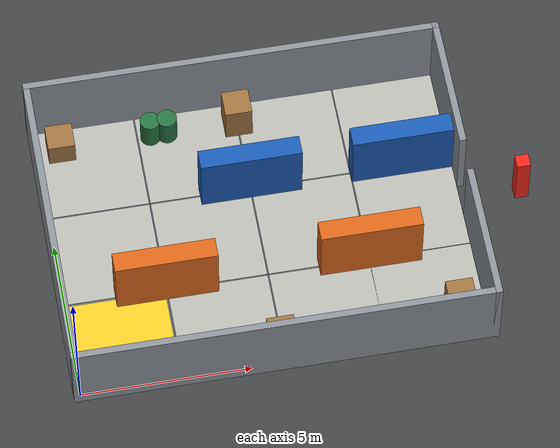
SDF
<?xml version="1.0"?>
<sdf version="1.6">
  <world name="warehouse">
    <gui><camera name="user_camera"><pose>6 -4.2 13.5 0 1.0 1.5708</pose><view_controller>orbit</view_controller></camera></gui>
    <physics type="ode"><max_step_size>0.004</max_step_size><real_time_update_rate>250</real_time_update_rate></physics>
    <plugin name="gazebo_ros_state" filename="libgazebo_ros_state.so"><ros><namespace>/</namespace></ros><update_rate>10</update_rate></plugin>
    <include><uri>model://sun</uri></include>
    <light name="lamp_a" type="point"><pose>3 4.5 6 0 0 0</pose><diffuse>0.7 0.7 0.65 1</diffuse><attenuation><range>20</range><constant>0.6</constant><linear>0.02</linear><quadratic>0.002</quadratic></attenuation><cast_shadows>false</cast_shadows></light>
    <light name="lamp_b" type="point"><pose>9 4.5 6 0 0 0</pose><diffuse>0.7 0.7 0.65 1</diffuse><attenuation><range>20</range><constant>0.6</constant><linear>0.02</linear><quadratic>0.002</quadratic></attenuation><cast_shadows>false</cast_shadows></light>
    <model name="ground"><static>true</static><link name="l">
      <collision name="c"><geometry><plane><normal>0 0 1</normal><size>60 60</size></plane></geometry>
        <surface><friction><ode><mu>1.0</mu><mu2>1.0</mu2></ode></friction></surface></collision>
      <visual name="v"><geometry><plane><normal>0 0 1</normal><size>60 60</size></plane></geometry>
        <material><ambient>0.25 0.26 0.27 1</ambient><diffuse>0.25 0.26 0.27 1</diffuse></material></visual></link></model>
    <model name="floor"><static>true</static><pose>6.0 4.5 0.004 0 0 0</pose>
      <link name="l"><visual name="v"><geometry><box><size>12.0 9.0 0.008</size></box></geometry>
        <material><ambient>0.72 0.72 0.7 1</ambient><diffuse>0.72 0.72 0.7 1</diffuse></material></visual></link></model>
    <model name="dock_zone"><static>true</static><pose>1.5 1.5 0.004 0 0 0</pose>
      <link name="l"><visual name="v"><geometry><box><size>2.9 2.9 0.008</size></box></geometry>
        <material><ambient>0.95 0.8 0.15 1</ambient><diffuse>0.95 0.8 0.15 1</diffuse></material></visual></link></model>
    <model name="gridline_x0"><static>true</static><pose>3.0 4.5 0.004 0 0 0</pose>
      <link name="l"><visual name="v"><geometry><box><size>0.04 9.0 0.008</size></box></geometry>
        <material><ambient>0.35 0.38 0.4 1</ambient><diffuse>0.35 0.38 0.4 1</diffuse></material></visual></link></model>
    <model name="gridline_x1"><static>true</static><pose>6.0 4.5 0.004 0 0 0</pose>
      <link name="l"><visual name="v"><geometry><box><size>0.04 9.0 0.008</size></box></geometry>
        <material><ambient>0.35 0.38 0.4 1</ambient><diffuse>0.35 0.38 0.4 1</diffuse></material></visual></link></model>
    <model name="gridline_x2"><static>true</static><pose>9.0 4.5 0.004 0 0 0</pose>
      <link name="l"><visual name="v"><geometry><box><size>0.04 9.0 0.008</size></box></geometry>
        <material><ambient>0.35 0.38 0.4 1</ambient><diffuse>0.35 0.38 0.4 1</diffuse></material></visual></link></model>
    <model name="gridline_y0"><static>true</static><pose>6.0 3.0 0.004 0 0 0</pose>
      <link name="l"><visual name="v"><geometry><box><size>12.0 0.04 0.008</size></box></geometry>
        <material><ambient>0.35 0.38 0.4 1</ambient><diffuse>0.35 0.38 0.4 1</diffuse></material></visual></link></model>
    <model name="gridline_y1"><static>true</static><pose>6.0 6.0 0.004 0 0 0</pose>
      <link name="l"><visual name="v"><geometry><box><size>12.0 0.04 0.008</size></box></geometry>
        <material><ambient>0.35 0.38 0.4 1</ambient><diffuse>0.35 0.38 0.4 1</diffuse></material></visual></link></model>
    <model name="wall_south"><static>true</static><pose>6.0 -0.1 1.25 0 0 0</pose>
      <link name="l"><collision name="c"><geometry><box><size>12.4 0.2 2.5</size></box></geometry></collision>
      <visual name="v"><geometry><box><size>12.4 0.2 2.5</size></box></geometry>
        <material><ambient>0.55 0.57 0.6 1</ambient><diffuse>0.55 0.57 0.6 1</diffuse></material></visual></link></model>
    <model name="wall_north"><static>true</static><pose>6.0 9.1 1.25 0 0 0</pose>
      <link name="l"><collision name="c"><geometry><box><size>12.4 0.2 2.5</size></box></geometry></collision>
      <visual name="v"><geometry><box><size>12.4 0.2 2.5</size></box></geometry>
        <material><ambient>0.55 0.57 0.6 1</ambient><diffuse>0.55 0.57 0.6 1</diffuse></material></visual></link></model>
    <model name="wall_west"><static>true</static><pose>-0.1 4.5 1.25 0 0 0</pose>
      <link name="l"><collision name="c"><geometry><box><size>0.2 9.0 2.5</size></box></geometry></collision>
      <visual name="v"><geometry><box><size>0.2 9.0 2.5</size></box></geometry>
        <material><ambient>0.55 0.57 0.6 1</ambient><diffuse>0.55 0.57 0.6 1</diffuse></material></visual></link></model>
    <model name="wall_east_a"><static>true</static><pose>12.1 1.9 1.25 0 0 0</pose>
      <link name="l"><collision name="c"><geometry><box><size>0.2 4.2 2.5</size></box></geometry></collision>
      <visual name="v"><geometry><box><size>0.2 4.2 2.5</size></box></geometry>
        <material><ambient>0.55 0.57 0.6 1</ambient><diffuse>0.55 0.57 0.6 1</diffuse></material></visual></link></model>
    <model name="wall_east_b"><static>true</static><pose>12.1 7.1 1.25 0 0 0</pose>
      <link name="l"><collision name="c"><geometry><box><size>0.2 4.2 2.5</size></box></geometry></collision>
      <visual name="v"><geometry><box><size>0.2 4.2 2.5</size></box></geometry>
        <material><ambient>0.55 0.57 0.6 1</ambient><diffuse>0.55 0.57 0.6 1</diffuse></material></visual></link></model>
    <model name="rack_s1"><static>true</static><pose>3.0 3.0 1.0 0 0 0</pose>
      <link name="l"><collision name="c"><geometry><box><size>3.0 0.6 2.0</size></box></geometry></collision>
      <visual name="v"><geometry><box><size>3.0 0.6 2.0</size></box></geometry>
        <material><ambient>0.85 0.4 0.1 1</ambient><diffuse>0.85 0.4 0.1 1</diffuse></material></visual></link></model>
    <model name="rack_s2"><static>true</static><pose>9.0 3.0 1.0 0 0 0</pose>
      <link name="l"><collision name="c"><geometry><box><size>3.0 0.6 2.0</size></box></geometry></collision>
      <visual name="v"><geometry><box><size>3.0 0.6 2.0</size></box></geometry>
        <material><ambient>0.85 0.4 0.1 1</ambient><diffuse>0.85 0.4 0.1 1</diffuse></material></visual></link></model>
    <model name="rack_n1"><static>true</static><pose>6.0 6.0 1.0 0 0 0</pose>
      <link name="l"><collision name="c"><geometry><box><size>3.0 0.6 2.0</size></box></geometry></collision>
      <visual name="v"><geometry><box><size>3.0 0.6 2.0</size></box></geometry>
        <material><ambient>0.1 0.35 0.7 1</ambient><diffuse>0.1 0.35 0.7 1</diffuse></material></visual></link></model>
    <model name="rack_n2"><static>true</static><pose>10.5 6.0 1.0 0 0 0</pose>
      <link name="l"><collision name="c"><geometry><box><size>3.0 0.6 2.0</size></box></geometry></collision>
      <visual name="v"><geometry><box><size>3.0 0.6 2.0</size></box></geometry>
        <material><ambient>0.1 0.35 0.7 1</ambient><diffuse>0.1 0.35 0.7 1</diffuse></material></visual></link></model>
    <model name="crate_1"><static>true</static><pose>6.0 0.7 0.4 0 0 0</pose>
      <link name="l"><collision name="c"><geometry><box><size>0.8 0.8 0.8</size></box></geometry></collision>
      <visual name="v"><geometry><box><size>0.8 0.8 0.8</size></box></geometry>
        <material><ambient>0.62 0.45 0.25 1</ambient><diffuse>0.62 0.45 0.25 1</diffuse></material></visual></link></model>
    <model name="crate_2"><static>true</static><pose>11.3 1.0 0.4 0 0 0</pose>
      <link name="l"><collision name="c"><geometry><box><size>0.8 0.8 0.8</size></box></geometry></collision>
      <visual name="v"><geometry><box><size>0.8 0.8 0.8</size></box></geometry>
        <material><ambient>0.62 0.45 0.25 1</ambient><diffuse>0.62 0.45 0.25 1</diffuse></material></visual></link></model>
    <model name="crate_3"><static>true</static><pose>0.7 8.3 0.4 0 0 0</pose>
      <link name="l"><collision name="c"><geometry><box><size>0.8 0.8 0.8</size></box></geometry></collision>
      <visual name="v"><geometry><box><size>0.8 0.8 0.8</size></box></geometry>
        <material><ambient>0.62 0.45 0.25 1</ambient><diffuse>0.62 0.45 0.25 1</diffuse></material></visual></link></model>
    <model name="crate_4"><static>true</static><pose>6.0 8.3 0.6 0 0 0</pose>
      <link name="l"><collision name="c"><geometry><box><size>0.8 0.8 1.2</size></box></geometry></collision>
      <visual name="v"><geometry><box><size>0.8 0.8 1.2</size></box></geometry>
        <material><ambient>0.62 0.45 0.25 1</ambient><diffuse>0.62 0.45 0.25 1</diffuse></material></visual></link></model>
    <model name="barrel_1"><static>true</static><pose>3.4 8.3 0.45 0 0 0</pose>
      <link name="l"><collision name="c"><geometry><cylinder><radius>0.3</radius><length>0.9</length></cylinder></geometry></collision>
      <visual name="v"><geometry><cylinder><radius>0.3</radius><length>0.9</length></cylinder></geometry>
        <material><ambient>0.15 0.45 0.25 1</ambient><diffuse>0.15 0.45 0.25 1</diffuse></material></visual></link></model>
    <model name="barrel_2"><static>true</static><pose>3.9 8.3 0.45 0 0 0</pose>
      <link name="l"><collision name="c"><geometry><cylinder><radius>0.3</radius><length>0.9</length></cylinder></geometry></collision>
      <visual name="v"><geometry><cylinder><radius>0.3</radius><length>0.9</length></cylinder></geometry>
        <material><ambient>0.15 0.45 0.25 1</ambient><diffuse>0.15 0.45 0.25 1</diffuse></material></visual></link></model>
    <model name="intruder"><pose>13.8 4.5 0.85 0 0 3.14159</pose>
      <link name="l"><gravity>false</gravity>
        <inertial><mass>10</mass><inertia><ixx>1</ixx><iyy>1</iyy><izz>1</izz></inertia></inertial>
        <collision name="c"><geometry><box><size>0.4 0.4 1.7</size></box></geometry></collision>
        <visual name="v"><geometry><box><size>0.4 0.4 1.7</size></box></geometry>
          <material><ambient>0.95 0.15 0.10 1</ambient><diffuse>0.95 0.15 0.10 1</diffuse></material></visual></link></model>
    <!-- virtual camera above the south wall looking over the whole floor: /overview/image_raw (for recordings that
         do not depend on the Gazebo window being visible) -->
    <model name="overview_cam"><static>true</static><pose>6 -3.2 10.5 0 0.95 1.5708</pose>
      <link name="l"><sensor name="cam" type="camera"><always_on>true</always_on><update_rate>10</update_rate>
        <camera><horizontal_fov>1.15</horizontal_fov><image><width>1280</width><height>720</height><format>R8G8B8</format></image><clip><near>0.1</near><far>60</far></clip></camera>
        <plugin name="overview_plugin" filename="libgazebo_ros_camera.so"><camera_name>overview</camera_name><frame_name>overview_cam</frame_name></plugin>
      </sensor></link></model>
  </world>
</sdf>
